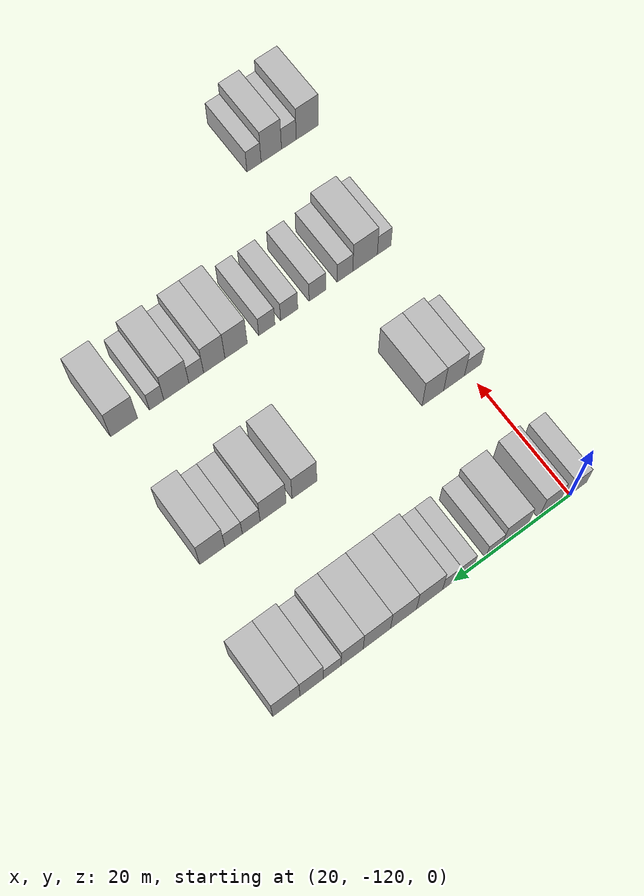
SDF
<sdf version="1.6">
 <world name="default">
  <model name="building_66">
   <static>1</static>
   <pose>25.0000 -121.5456 0 0.000000 0.000000 0.000000</pose>
   <link name="link">
    <pose>0 0 3.00 0 0 0</pose>
    <collision name="collision"><geometry><box><size>10.0000 2.8247 6.0000</size></box></geometry></collision>
    <visual name="visual">
     <cast_shadows>0</cast_shadows>
     <geometry><box><size>10.0000 2.8247 6.0000</size></box></geometry>
     <material>
      <script>
       <uri>model://HANNAS_wall/materials/scripts</uri>
       <uri>model://HANNAS_wall/materials/textures</uri>
       <name>vrc/HANNAS_wall</name>
      </script>
     </material>
    </visual>
   </link>
  </model>
  <model name="building_67">
   <static>1</static>
   <pose>25.0000 -116.3218 0 0.000000 0.000000 0.000000</pose>
   <link name="link">
    <pose>0 0 4.50 0 0 0</pose>
    <collision name="collision"><geometry><box><size>10.0000 3.6230 9.0000</size></box></geometry></collision>
    <visual name="visual">
     <cast_shadows>0</cast_shadows>
     <geometry><box><size>10.0000 3.6230 9.0000</size></box></geometry>
     <material>
      <script>
       <uri>model://HANNAS_wall/materials/scripts</uri>
       <uri>model://HANNAS_wall/materials/textures</uri>
       <name>vrc/HANNAS_wall</name>
      </script>
     </material>
    </visual>
   </link>
  </model>
  <model name="building_68">
   <static>1</static>
   <pose>25.0000 -110.3166 0 0.000000 0.000000 0.000000</pose>
   <link name="link">
    <pose>0 0 4.50 0 0 0</pose>
    <collision name="collision"><geometry><box><size>10.0000 4.3874 9.0000</size></box></geometry></collision>
    <visual name="visual">
     <cast_shadows>0</cast_shadows>
     <geometry><box><size>10.0000 4.3874 9.0000</size></box></geometry>
     <material>
      <script>
       <uri>model://HANNAS_wall/materials/scripts</uri>
       <uri>model://HANNAS_wall/materials/textures</uri>
       <name>vrc/HANNAS_wall</name>
      </script>
     </material>
    </visual>
   </link>
  </model>
  <model name="building_69">
   <static>1</static>
   <pose>25.0000 -106.7494 0 0.000000 0.000000 0.000000</pose>
   <link name="link">
    <pose>0 0 3.00 0 0 0</pose>
    <collision name="collision"><geometry><box><size>10.0000 2.7470 6.0000</size></box></geometry></collision>
    <visual name="visual">
     <cast_shadows>0</cast_shadows>
     <geometry><box><size>10.0000 2.7470 6.0000</size></box></geometry>
     <material>
      <script>
       <uri>model://HANNAS_wall/materials/scripts</uri>
       <uri>model://HANNAS_wall/materials/textures</uri>
       <name>vrc/HANNAS_wall</name>
      </script>
     </material>
    </visual>
   </link>
  </model>
  <model name="building_70">
   <static>1</static>
   <pose>25.0000 -102.0822 0 0.000000 0.000000 0.000000</pose>
   <link name="link">
    <pose>0 0 3.00 0 0 0</pose>
    <collision name="collision"><geometry><box><size>10.0000 2.5875 6.0000</size></box></geometry></collision>
    <visual name="visual">
     <cast_shadows>0</cast_shadows>
     <geometry><box><size>10.0000 2.5875 6.0000</size></box></geometry>
     <material>
      <script>
       <uri>model://HANNAS_wall/materials/scripts</uri>
       <uri>model://HANNAS_wall/materials/textures</uri>
       <name>vrc/HANNAS_wall</name>
      </script>
     </material>
    </visual>
   </link>
  </model>
  <model name="building_71">
   <static>1</static>
   <pose>25.0000 -99.4238 0 0.000000 0.000000 0.000000</pose>
   <link name="link">
    <pose>0 0 3.00 0 0 0</pose>
    <collision name="collision"><geometry><box><size>10.0000 2.7293 6.0000</size></box></geometry></collision>
    <visual name="visual">
     <cast_shadows>0</cast_shadows>
     <geometry><box><size>10.0000 2.7293 6.0000</size></box></geometry>
     <material>
      <script>
       <uri>model://HANNAS_wall/materials/scripts</uri>
       <uri>model://HANNAS_wall/materials/textures</uri>
       <name>vrc/HANNAS_wall</name>
      </script>
     </material>
    </visual>
   </link>
  </model>
  <model name="building_72">
   <static>1</static>
   <pose>25.0000 -95.8785 0 0.000000 0.000000 0.000000</pose>
   <link name="link">
    <pose>0 0 4.50 0 0 0</pose>
    <collision name="collision"><geometry><box><size>10.0000 4.3613 9.0000</size></box></geometry></collision>
    <visual name="visual">
     <cast_shadows>0</cast_shadows>
     <geometry><box><size>10.0000 4.3613 9.0000</size></box></geometry>
     <material>
      <script>
       <uri>model://HANNAS_wall/materials/scripts</uri>
       <uri>model://HANNAS_wall/materials/textures</uri>
       <name>vrc/HANNAS_wall</name>
      </script>
     </material>
    </visual>
   </link>
  </model>
  <model name="building_73">
   <static>1</static>
   <pose>25.0000 -91.5389 0 0.000000 0.000000 0.000000</pose>
   <link name="link">
    <pose>0 0 4.50 0 0 0</pose>
    <collision name="collision"><geometry><box><size>10.0000 4.3179 9.0000</size></box></geometry></collision>
    <visual name="visual">
     <cast_shadows>0</cast_shadows>
     <geometry><box><size>10.0000 4.3179 9.0000</size></box></geometry>
     <material>
      <script>
       <uri>model://HANNAS_wall/materials/scripts</uri>
       <uri>model://HANNAS_wall/materials/textures</uri>
       <name>vrc/HANNAS_wall</name>
      </script>
     </material>
    </visual>
   </link>
  </model>
  <model name="building_74">
   <static>1</static>
   <pose>25.0000 -87.1321 0 0.000000 0.000000 0.000000</pose>
   <link name="link">
    <pose>0 0 4.50 0 0 0</pose>
    <collision name="collision"><geometry><box><size>10.0000 4.4958 9.0000</size></box></geometry></collision>
    <visual name="visual">
     <cast_shadows>0</cast_shadows>
     <geometry><box><size>10.0000 4.4958 9.0000</size></box></geometry>
     <material>
      <script>
       <uri>model://HANNAS_wall/materials/scripts</uri>
       <uri>model://HANNAS_wall/materials/textures</uri>
       <name>vrc/HANNAS_wall</name>
      </script>
     </material>
    </visual>
   </link>
  </model>
  <model name="building_75">
   <static>1</static>
   <pose>25.0000 -83.0753 0 0.000000 0.000000 0.000000</pose>
   <link name="link">
    <pose>0 0 4.50 0 0 0</pose>
    <collision name="collision"><geometry><box><size>10.0000 3.6179 9.0000</size></box></geometry></collision>
    <visual name="visual">
     <cast_shadows>0</cast_shadows>
     <geometry><box><size>10.0000 3.6179 9.0000</size></box></geometry>
     <material>
      <script>
       <uri>model://HANNAS_wall/materials/scripts</uri>
       <uri>model://HANNAS_wall/materials/textures</uri>
       <name>vrc/HANNAS_wall</name>
      </script>
     </material>
    </visual>
   </link>
  </model>
  <model name="building_76">
   <static>1</static>
   <pose>25.0000 -79.8219 0 0.000000 0.000000 0.000000</pose>
   <link name="link">
    <pose>0 0 3.00 0 0 0</pose>
    <collision name="collision"><geometry><box><size>10.0000 2.8889 6.0000</size></box></geometry></collision>
    <visual name="visual">
     <cast_shadows>0</cast_shadows>
     <geometry><box><size>10.0000 2.8889 6.0000</size></box></geometry>
     <material>
      <script>
       <uri>model://HANNAS_wall/materials/scripts</uri>
       <uri>model://HANNAS_wall/materials/textures</uri>
       <name>vrc/HANNAS_wall</name>
      </script>
     </material>
    </visual>
   </link>
  </model>
  <model name="building_77">
   <static>1</static>
   <pose>25.0000 -76.5133 0 0.000000 0.000000 0.000000</pose>
   <link name="link">
    <pose>0 0 4.50 0 0 0</pose>
    <collision name="collision"><geometry><box><size>10.0000 3.7283 9.0000</size></box></geometry></collision>
    <visual name="visual">
     <cast_shadows>0</cast_shadows>
     <geometry><box><size>10.0000 3.7283 9.0000</size></box></geometry>
     <material>
      <script>
       <uri>model://HANNAS_wall/materials/scripts</uri>
       <uri>model://HANNAS_wall/materials/textures</uri>
       <name>vrc/HANNAS_wall</name>
      </script>
     </material>
    </visual>
   </link>
  </model>
  <model name="building_78">
   <static>1</static>
   <pose>25.0000 -72.4748 0 0.000000 0.000000 0.000000</pose>
   <link name="link">
    <pose>0 0 4.50 0 0 0</pose>
    <collision name="collision"><geometry><box><size>10.0000 4.3487 9.0000</size></box></geometry></collision>
    <visual name="visual">
     <cast_shadows>0</cast_shadows>
     <geometry><box><size>10.0000 4.3487 9.0000</size></box></geometry>
     <material>
      <script>
       <uri>model://HANNAS_wall/materials/scripts</uri>
       <uri>model://HANNAS_wall/materials/textures</uri>
       <name>vrc/HANNAS_wall</name>
      </script>
     </material>
    </visual>
   </link>
  </model>
  <model name="building_257">
   <static>1</static>
   <pose>47.0000 -120.6786 0 0.000000 0.000000 0.000000</pose>
   <link name="link">
    <pose>0 0 3.00 0 0 0</pose>
    <collision name="collision"><geometry><box><size>10.0000 2.9504 6.0000</size></box></geometry></collision>
    <visual name="visual">
     <cast_shadows>0</cast_shadows>
     <geometry><box><size>10.0000 2.9504 6.0000</size></box></geometry>
     <material>
      <script>
       <uri>model://HANNAS_wall/materials/scripts</uri>
       <uri>model://HANNAS_wall/materials/textures</uri>
       <name>vrc/HANNAS_wall</name>
      </script>
     </material>
    </visual>
   </link>
  </model>
  <model name="building_258">
   <static>1</static>
   <pose>47.0000 -117.3621 0 0.000000 0.000000 0.000000</pose>
   <link name="link">
    <pose>0 0 4.50 0 0 0</pose>
    <collision name="collision"><geometry><box><size>10.0000 3.6825 9.0000</size></box></geometry></collision>
    <visual name="visual">
     <cast_shadows>0</cast_shadows>
     <geometry><box><size>10.0000 3.6825 9.0000</size></box></geometry>
     <material>
      <script>
       <uri>model://HANNAS_wall/materials/scripts</uri>
       <uri>model://HANNAS_wall/materials/textures</uri>
       <name>vrc/HANNAS_wall</name>
      </script>
     </material>
    </visual>
   </link>
  </model>
  <model name="building_259">
   <static>1</static>
   <pose>47.0000 -113.6303 0 0.000000 0.000000 0.000000</pose>
   <link name="link">
    <pose>0 0 4.50 0 0 0</pose>
    <collision name="collision"><geometry><box><size>10.0000 3.7813 9.0000</size></box></geometry></collision>
    <visual name="visual">
     <cast_shadows>0</cast_shadows>
     <geometry><box><size>10.0000 3.7813 9.0000</size></box></geometry>
     <material>
      <script>
       <uri>model://HANNAS_wall/materials/scripts</uri>
       <uri>model://HANNAS_wall/materials/textures</uri>
       <name>vrc/HANNAS_wall</name>
      </script>
     </material>
    </visual>
   </link>
  </model>
  <model name="building_260">
   <static>1</static>
   <pose>47.0000 -91.5283 0 0.000000 0.000000 0.000000</pose>
   <link name="link">
    <pose>0 0 4.50 0 0 0</pose>
    <collision name="collision"><geometry><box><size>10.0000 4.1408 9.0000</size></box></geometry></collision>
    <visual name="visual">
     <cast_shadows>0</cast_shadows>
     <geometry><box><size>10.0000 4.1408 9.0000</size></box></geometry>
     <material>
      <script>
       <uri>model://HANNAS_wall/materials/scripts</uri>
       <uri>model://HANNAS_wall/materials/textures</uri>
       <name>vrc/HANNAS_wall</name>
      </script>
     </material>
    </visual>
   </link>
  </model>
  <model name="building_261">
   <static>1</static>
   <pose>47.0000 -86.2986 0 0.000000 0.000000 0.000000</pose>
   <link name="link">
    <pose>0 0 4.50 0 0 0</pose>
    <collision name="collision"><geometry><box><size>10.0000 4.3186 9.0000</size></box></geometry></collision>
    <visual name="visual">
     <cast_shadows>0</cast_shadows>
     <geometry><box><size>10.0000 4.3186 9.0000</size></box></geometry>
     <material>
      <script>
       <uri>model://HANNAS_wall/materials/scripts</uri>
       <uri>model://HANNAS_wall/materials/textures</uri>
       <name>vrc/HANNAS_wall</name>
      </script>
     </material>
    </visual>
   </link>
  </model>
  <model name="building_262">
   <static>1</static>
   <pose>47.0000 -82.6675 0 0.000000 0.000000 0.000000</pose>
   <link name="link">
    <pose>0 0 3.00 0 0 0</pose>
    <collision name="collision"><geometry><box><size>10.0000 2.9435 6.0000</size></box></geometry></collision>
    <visual name="visual">
     <cast_shadows>0</cast_shadows>
     <geometry><box><size>10.0000 2.9435 6.0000</size></box></geometry>
     <material>
      <script>
       <uri>model://HANNAS_wall/materials/scripts</uri>
       <uri>model://HANNAS_wall/materials/textures</uri>
       <name>vrc/HANNAS_wall</name>
      </script>
     </material>
    </visual>
   </link>
  </model>
  <model name="building_263">
   <static>1</static>
   <pose>47.0000 -79.7464 0 0.000000 0.000000 0.000000</pose>
   <link name="link">
    <pose>0 0 3.00 0 0 0</pose>
    <collision name="collision"><geometry><box><size>10.0000 2.8988 6.0000</size></box></geometry></collision>
    <visual name="visual">
     <cast_shadows>0</cast_shadows>
     <geometry><box><size>10.0000 2.8988 6.0000</size></box></geometry>
     <material>
      <script>
       <uri>model://HANNAS_wall/materials/scripts</uri>
       <uri>model://HANNAS_wall/materials/textures</uri>
       <name>vrc/HANNAS_wall</name>
      </script>
     </material>
    </visual>
   </link>
  </model>
  <model name="building_264">
   <static>1</static>
   <pose>47.0000 -76.2511 0 0.000000 0.000000 0.000000</pose>
   <link name="link">
    <pose>0 0 4.50 0 0 0</pose>
    <collision name="collision"><geometry><box><size>10.0000 4.0918 9.0000</size></box></geometry></collision>
    <visual name="visual">
     <cast_shadows>0</cast_shadows>
     <geometry><box><size>10.0000 4.0918 9.0000</size></box></geometry>
     <material>
      <script>
       <uri>model://HANNAS_wall/materials/scripts</uri>
       <uri>model://HANNAS_wall/materials/textures</uri>
       <name>vrc/HANNAS_wall</name>
      </script>
     </material>
    </visual>
   </link>
  </model>
  <model name="building_441">
   <static>1</static>
   <pose>69.0000 -121.9018 0 0.000000 0.000000 0.000000</pose>
   <link name="link">
    <pose>0 0 3.00 0 0 0</pose>
    <collision name="collision"><geometry><box><size>10.0000 2.4524 6.0000</size></box></geometry></collision>
    <visual name="visual">
     <cast_shadows>0</cast_shadows>
     <geometry><box><size>10.0000 2.4524 6.0000</size></box></geometry>
     <material>
      <script>
       <uri>model://HANNAS_wall/materials/scripts</uri>
       <uri>model://HANNAS_wall/materials/textures</uri>
       <name>vrc/HANNAS_wall</name>
      </script>
     </material>
    </visual>
   </link>
  </model>
  <model name="building_442">
   <static>1</static>
   <pose>69.0000 -118.4728 0 0.000000 0.000000 0.000000</pose>
   <link name="link">
    <pose>0 0 4.50 0 0 0</pose>
    <collision name="collision"><geometry><box><size>10.0000 4.4055 9.0000</size></box></geometry></collision>
    <visual name="visual">
     <cast_shadows>0</cast_shadows>
     <geometry><box><size>10.0000 4.4055 9.0000</size></box></geometry>
     <material>
      <script>
       <uri>model://HANNAS_wall/materials/scripts</uri>
       <uri>model://HANNAS_wall/materials/textures</uri>
       <name>vrc/HANNAS_wall</name>
      </script>
     </material>
    </visual>
   </link>
  </model>
  <model name="building_443">
   <static>1</static>
   <pose>69.0000 -114.8821 0 0.000000 0.000000 0.000000</pose>
   <link name="link">
    <pose>0 0 3.00 0 0 0</pose>
    <collision name="collision"><geometry><box><size>10.0000 2.7758 6.0000</size></box></geometry></collision>
    <visual name="visual">
     <cast_shadows>0</cast_shadows>
     <geometry><box><size>10.0000 2.7758 6.0000</size></box></geometry>
     <material>
      <script>
       <uri>model://HANNAS_wall/materials/scripts</uri>
       <uri>model://HANNAS_wall/materials/textures</uri>
       <name>vrc/HANNAS_wall</name>
      </script>
     </material>
    </visual>
   </link>
  </model>
  <model name="building_444">
   <static>1</static>
   <pose>69.0000 -110.0094 0 0.000000 0.000000 0.000000</pose>
   <link name="link">
    <pose>0 0 3.00 0 0 0</pose>
    <collision name="collision"><geometry><box><size>10.0000 2.9697 6.0000</size></box></geometry></collision>
    <visual name="visual">
     <cast_shadows>0</cast_shadows>
     <geometry><box><size>10.0000 2.9697 6.0000</size></box></geometry>
     <material>
      <script>
       <uri>model://HANNAS_wall/materials/scripts</uri>
       <uri>model://HANNAS_wall/materials/textures</uri>
       <name>vrc/HANNAS_wall</name>
      </script>
     </material>
    </visual>
   </link>
  </model>
  <model name="building_445">
   <static>1</static>
   <pose>69.0000 -105.0253 0 0.000000 0.000000 0.000000</pose>
   <link name="link">
    <pose>0 0 3.00 0 0 0</pose>
    <collision name="collision"><geometry><box><size>10.0000 2.9985 6.0000</size></box></geometry></collision>
    <visual name="visual">
     <cast_shadows>0</cast_shadows>
     <geometry><box><size>10.0000 2.9985 6.0000</size></box></geometry>
     <material>
      <script>
       <uri>model://HANNAS_wall/materials/scripts</uri>
       <uri>model://HANNAS_wall/materials/textures</uri>
       <name>vrc/HANNAS_wall</name>
      </script>
     </material>
    </visual>
   </link>
  </model>
  <model name="building_446">
   <static>1</static>
   <pose>69.0000 -101.1278 0 0.000000 0.000000 0.000000</pose>
   <link name="link">
    <pose>0 0 3.00 0 0 0</pose>
    <collision name="collision"><geometry><box><size>10.0000 2.7967 6.0000</size></box></geometry></collision>
    <visual name="visual">
     <cast_shadows>0</cast_shadows>
     <geometry><box><size>10.0000 2.7967 6.0000</size></box></geometry>
     <material>
      <script>
       <uri>model://HANNAS_wall/materials/scripts</uri>
       <uri>model://HANNAS_wall/materials/textures</uri>
       <name>vrc/HANNAS_wall</name>
      </script>
     </material>
    </visual>
   </link>
  </model>
  <model name="building_447">
   <static>1</static>
   <pose>69.0000 -95.8148 0 0.000000 0.000000 0.000000</pose>
   <link name="link">
    <pose>0 0 4.50 0 0 0</pose>
    <collision name="collision"><geometry><box><size>10.0000 3.8292 9.0000</size></box></geometry></collision>
    <visual name="visual">
     <cast_shadows>0</cast_shadows>
     <geometry><box><size>10.0000 3.8292 9.0000</size></box></geometry>
     <material>
      <script>
       <uri>model://HANNAS_wall/materials/scripts</uri>
       <uri>model://HANNAS_wall/materials/textures</uri>
       <name>vrc/HANNAS_wall</name>
      </script>
     </material>
    </visual>
   </link>
  </model>
  <model name="building_448">
   <static>1</static>
   <pose>69.0000 -92.0785 0 0.000000 0.000000 0.000000</pose>
   <link name="link">
    <pose>0 0 4.50 0 0 0</pose>
    <collision name="collision"><geometry><box><size>10.0000 3.6433 9.0000</size></box></geometry></collision>
    <visual name="visual">
     <cast_shadows>0</cast_shadows>
     <geometry><box><size>10.0000 3.6433 9.0000</size></box></geometry>
     <material>
      <script>
       <uri>model://HANNAS_wall/materials/scripts</uri>
       <uri>model://HANNAS_wall/materials/textures</uri>
       <name>vrc/HANNAS_wall</name>
      </script>
     </material>
    </visual>
   </link>
  </model>
  <model name="building_449">
   <static>1</static>
   <pose>69.0000 -89.0024 0 0.000000 0.000000 0.000000</pose>
   <link name="link">
    <pose>0 0 3.00 0 0 0</pose>
    <collision name="collision"><geometry><box><size>10.0000 2.5090 6.0000</size></box></geometry></collision>
    <visual name="visual">
     <cast_shadows>0</cast_shadows>
     <geometry><box><size>10.0000 2.5090 6.0000</size></box></geometry>
     <material>
      <script>
       <uri>model://HANNAS_wall/materials/scripts</uri>
       <uri>model://HANNAS_wall/materials/textures</uri>
       <name>vrc/HANNAS_wall</name>
      </script>
     </material>
    </visual>
   </link>
  </model>
  <model name="building_450">
   <static>1</static>
   <pose>69.0000 -85.6410 0 0.000000 0.000000 0.000000</pose>
   <link name="link">
    <pose>0 0 4.50 0 0 0</pose>
    <collision name="collision"><geometry><box><size>10.0000 4.2139 9.0000</size></box></geometry></collision>
    <visual name="visual">
     <cast_shadows>0</cast_shadows>
     <geometry><box><size>10.0000 4.2139 9.0000</size></box></geometry>
     <material>
      <script>
       <uri>model://HANNAS_wall/materials/scripts</uri>
       <uri>model://HANNAS_wall/materials/textures</uri>
       <name>vrc/HANNAS_wall</name>
      </script>
     </material>
    </visual>
   </link>
  </model>
  <model name="building_451">
   <static>1</static>
   <pose>69.0000 -82.3242 0 0.000000 0.000000 0.000000</pose>
   <link name="link">
    <pose>0 0 3.00 0 0 0</pose>
    <collision name="collision"><geometry><box><size>10.0000 2.4196 6.0000</size></box></geometry></collision>
    <visual name="visual">
     <cast_shadows>0</cast_shadows>
     <geometry><box><size>10.0000 2.4196 6.0000</size></box></geometry>
     <material>
      <script>
       <uri>model://HANNAS_wall/materials/scripts</uri>
       <uri>model://HANNAS_wall/materials/textures</uri>
       <name>vrc/HANNAS_wall</name>
      </script>
     </material>
    </visual>
   </link>
  </model>
  <model name="building_452">
   <static>1</static>
   <pose>69.0000 -76.8714 0 0.000000 0.000000 0.000000</pose>
   <link name="link">
    <pose>0 0 4.50 0 0 0</pose>
    <collision name="collision"><geometry><box><size>10.0000 4.4860 9.0000</size></box></geometry></collision>
    <visual name="visual">
     <cast_shadows>0</cast_shadows>
     <geometry><box><size>10.0000 4.4860 9.0000</size></box></geometry>
     <material>
      <script>
       <uri>model://HANNAS_wall/materials/scripts</uri>
       <uri>model://HANNAS_wall/materials/textures</uri>
       <name>vrc/HANNAS_wall</name>
      </script>
     </material>
    </visual>
   </link>
  </model>
  <model name="building_631">
   <static>1</static>
   <pose>91.0000 -124.3977 0 0.000000 0.000000 0.000000</pose>
   <link name="link">
    <pose>0 0 4.50 0 0 0</pose>
    <collision name="collision"><geometry><box><size>10.0000 4.0445 9.0000</size></box></geometry></collision>
    <visual name="visual">
     <cast_shadows>0</cast_shadows>
     <geometry><box><size>10.0000 4.0445 9.0000</size></box></geometry>
     <material>
      <script>
       <uri>model://HANNAS_wall/materials/scripts</uri>
       <uri>model://HANNAS_wall/materials/textures</uri>
       <name>vrc/HANNAS_wall</name>
      </script>
     </material>
    </visual>
   </link>
  </model>
  <model name="building_632">
   <static>1</static>
   <pose>91.0000 -121.0244 0 0.000000 0.000000 0.000000</pose>
   <link name="link">
    <pose>0 0 3.00 0 0 0</pose>
    <collision name="collision"><geometry><box><size>10.0000 2.7022 6.0000</size></box></geometry></collision>
    <visual name="visual">
     <cast_shadows>0</cast_shadows>
     <geometry><box><size>10.0000 2.7022 6.0000</size></box></geometry>
     <material>
      <script>
       <uri>model://HANNAS_wall/materials/scripts</uri>
       <uri>model://HANNAS_wall/materials/textures</uri>
       <name>vrc/HANNAS_wall</name>
      </script>
     </material>
    </visual>
   </link>
  </model>
  <model name="building_633">
   <static>1</static>
   <pose>91.0000 -117.8253 0 0.000000 0.000000 0.000000</pose>
   <link name="link">
    <pose>0 0 4.50 0 0 0</pose>
    <collision name="collision"><geometry><box><size>10.0000 3.6960 9.0000</size></box></geometry></collision>
    <visual name="visual">
     <cast_shadows>0</cast_shadows>
     <geometry><box><size>10.0000 3.6960 9.0000</size></box></geometry>
     <material>
      <script>
       <uri>model://HANNAS_wall/materials/scripts</uri>
       <uri>model://HANNAS_wall/materials/textures</uri>
       <name>vrc/HANNAS_wall</name>
      </script>
     </material>
    </visual>
   </link>
  </model>
  <model name="building_634">
   <static>1</static>
   <pose>91.0000 -114.6948 0 0.000000 0.000000 0.000000</pose>
   <link name="link">
    <pose>0 0 3.00 0 0 0</pose>
    <collision name="collision"><geometry><box><size>10.0000 2.5649 6.0000</size></box></geometry></collision>
    <visual name="visual">
     <cast_shadows>0</cast_shadows>
     <geometry><box><size>10.0000 2.5649 6.0000</size></box></geometry>
     <material>
      <script>
       <uri>model://HANNAS_wall/materials/scripts</uri>
       <uri>model://HANNAS_wall/materials/textures</uri>
       <name>vrc/HANNAS_wall</name>
      </script>
     </material>
    </visual>
   </link>
  </model>
 </world>
</sdf>
